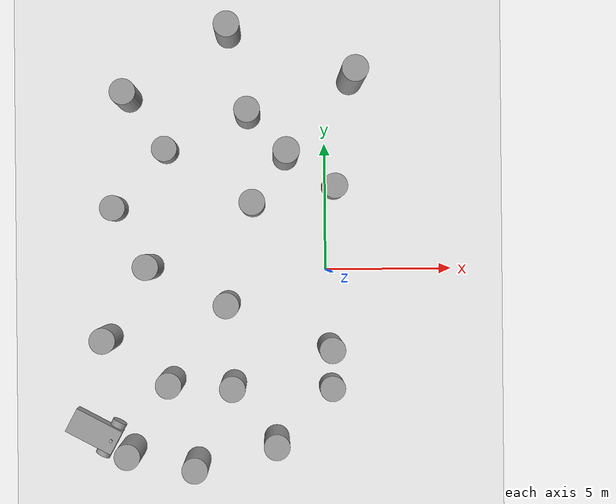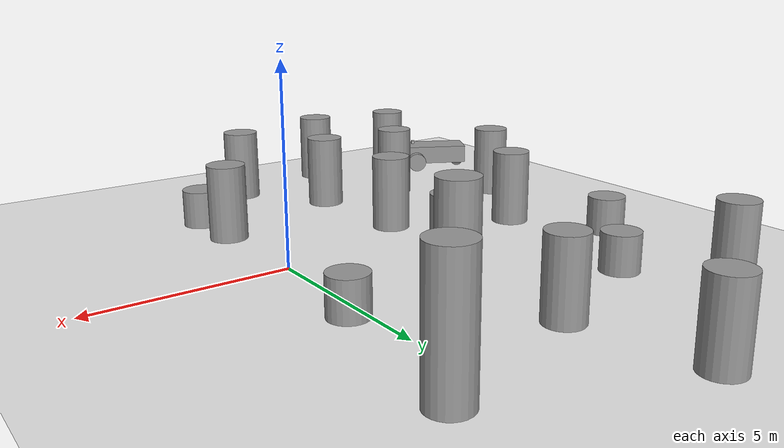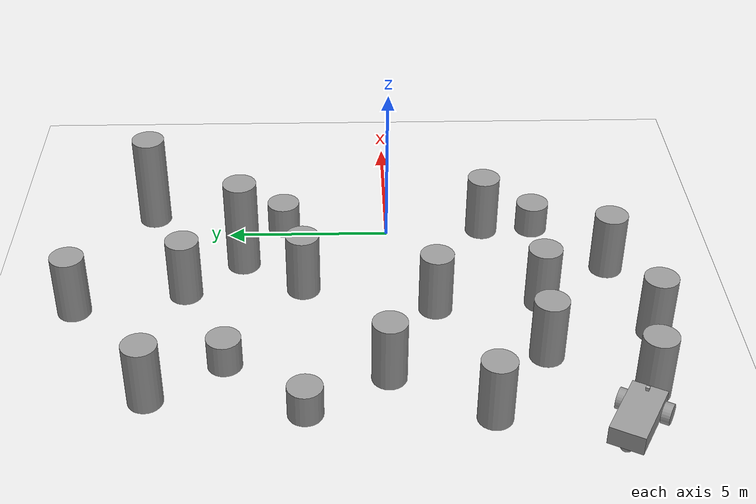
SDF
<sdf version="1.6">
 <world name="default">
  <model name="ground_plane">
   <static>1</static>
   <link name="link">
    <collision name="collision">
     <geometry><plane><normal>0 0 1</normal><size>100 100</size></plane></geometry>
     <surface><friction><ode><mu>100</mu><mu2>50</mu2></ode></friction></surface>
    </collision>
    <visual name="visual">
     <geometry><plane><normal>0 0 1</normal><size>100 100</size></plane></geometry>
     <material>
      <script><uri>file://media/materials/scripts/gazebo.material</uri><name>Gazebo/White</name></script>
     </material>
    </visual>
   </link>
  </model>
  <model name="unit_cylinder_5_clone_0">
   <link name="link">
    <inertial>
     <mass>1</mass>
     <inertia><ixx>0.145833</ixx><ixy>0</ixy><ixz>0</ixz><iyy>0.145833</iyy><iyz>0</iyz><izz>0.125</izz></inertia>
    </inertial>
    <visual name="visual">
     <geometry><cylinder><radius>0.5</radius><length>2</length></cylinder></geometry>
     <material>
      <script><name>Gazebo/Grey</name><uri>file://media/materials/scripts/gazebo.material</uri></script>
      <ambient>0.3 0.3 0.3 1</ambient>
      <diffuse>0.7 0.7 0.7 1</diffuse>
      <specular>0.01 0.01 0.01 1</specular>
      <emissive>0 0 0 1</emissive>
      <shader type="vertex"><normal_map>__default__</normal_map></shader>
     </material>
    </visual>
    <collision name="collision">
     <geometry><cylinder><radius>0.5</radius><length>2</length></cylinder></geometry>
     <surface>
      <friction>
       <ode><mu>1</mu><mu2>1</mu2><fdir1>0 0 0</fdir1><slip1>0</slip1><slip2>0</slip2></ode>
       <torsional>
        <coefficient>1</coefficient>
        <patch_radius>0</patch_radius>
        <surface_radius>0</surface_radius>
        <use_patch_radius>1</use_patch_radius>
        <ode><slip>0</slip></ode>
       </torsional>
      </friction>
      <bounce><restitution_coefficient>0</restitution_coefficient><threshold>1e+06</threshold></bounce>
      <contact>
       <collide_without_contact>0</collide_without_contact>
       <collide_without_contact_bitmask>1</collide_without_contact_bitmask>
       <collide_bitmask>1</collide_bitmask>
       <ode>
        <soft_cfm>0</soft_cfm>
        <soft_erp>0.2</soft_erp>
        <kp>1e+13</kp>
        <kd>1</kd>
        <max_vel>0.01</max_vel>
        <min_depth>0</min_depth>
       </ode>
       <bullet>
        <split_impulse>1</split_impulse>
        <split_impulse_penetration_threshold>-0.01</split_impulse_penetration_threshold>
        <soft_cfm>0</soft_cfm>
        <soft_erp>0.2</soft_erp>
        <kp>1e+13</kp>
        <kd>1</kd>
       </bullet>
      </contact>
     </surface>
    </collision>
   </link>
   <static>0</static>
   <pose>0.14929 -3.03615 0.999884 2.2e-05 -1e-06 0.002215</pose>
  </model>
  <model name="unit_cylinder_5_clone_1">
   <link name="link">
    <inertial>
     <mass>1</mass>
     <inertia><ixx>0.145833</ixx><ixy>0</ixy><ixz>0</ixz><iyy>0.145833</iyy><iyz>0</iyz><izz>0.125</izz></inertia>
    </inertial>
    <visual name="visual">
     <geometry><cylinder><radius>0.5</radius><length>2</length></cylinder></geometry>
     <material>
      <script><name>Gazebo/Grey</name><uri>file://media/materials/scripts/gazebo.material</uri></script>
      <ambient>0.3 0.3 0.3 1</ambient>
      <diffuse>0.7 0.7 0.7 1</diffuse>
      <specular>0.01 0.01 0.01 1</specular>
      <emissive>0 0 0 1</emissive>
      <shader type="vertex"><normal_map>__default__</normal_map></shader>
     </material>
    </visual>
    <collision name="collision">
     <geometry><cylinder><radius>0.5</radius><length>2</length></cylinder></geometry>
     <surface>
      <friction>
       <ode><mu>1</mu><mu2>1</mu2><fdir1>0 0 0</fdir1><slip1>0</slip1><slip2>0</slip2></ode>
       <torsional>
        <coefficient>1</coefficient>
        <patch_radius>0</patch_radius>
        <surface_radius>0</surface_radius>
        <use_patch_radius>1</use_patch_radius>
        <ode><slip>0</slip></ode>
       </torsional>
      </friction>
      <bounce><restitution_coefficient>0</restitution_coefficient><threshold>1e+06</threshold></bounce>
      <contact>
       <collide_without_contact>0</collide_without_contact>
       <collide_without_contact_bitmask>1</collide_without_contact_bitmask>
       <collide_bitmask>1</collide_bitmask>
       <ode>
        <soft_cfm>0</soft_cfm>
        <soft_erp>0.2</soft_erp>
        <kp>1e+13</kp>
        <kd>1</kd>
        <max_vel>0.01</max_vel>
        <min_depth>0</min_depth>
       </ode>
       <bullet>
        <split_impulse>1</split_impulse>
        <split_impulse_penetration_threshold>-0.01</split_impulse_penetration_threshold>
        <soft_cfm>0</soft_cfm>
        <soft_erp>0.2</soft_erp>
        <kp>1e+13</kp>
        <kd>1</kd>
       </bullet>
      </contact>
     </surface>
    </collision>
   </link>
   <static>0</static>
   <pose>-2.86936 2.60722 0.999884 2.2e-05 -1e-06 -0.002002</pose>
  </model>
  <model name="unit_cylinder_5_clone_2">
   <link name="link">
    <inertial>
     <mass>1</mass>
     <inertia><ixx>0.145833</ixx><ixy>0</ixy><ixz>0</ixz><iyy>0.145833</iyy><iyz>0</iyz><izz>0.125</izz></inertia>
    </inertial>
    <visual name="visual">
     <geometry><cylinder><radius>0.5</radius><length>2</length></cylinder></geometry>
     <material>
      <script><name>Gazebo/Grey</name><uri>file://media/materials/scripts/gazebo.material</uri></script>
      <ambient>0.3 0.3 0.3 1</ambient>
      <diffuse>0.7 0.7 0.7 1</diffuse>
      <specular>0.01 0.01 0.01 1</specular>
      <emissive>0 0 0 1</emissive>
      <shader type="vertex"><normal_map>__default__</normal_map></shader>
     </material>
    </visual>
    <collision name="collision">
     <geometry><cylinder><radius>0.5</radius><length>2</length></cylinder></geometry>
     <surface>
      <friction>
       <ode><mu>1</mu><mu2>1</mu2><fdir1>0 0 0</fdir1><slip1>0</slip1><slip2>0</slip2></ode>
       <torsional>
        <coefficient>1</coefficient>
        <patch_radius>0</patch_radius>
        <surface_radius>0</surface_radius>
        <use_patch_radius>1</use_patch_radius>
        <ode><slip>0</slip></ode>
       </torsional>
      </friction>
      <bounce><restitution_coefficient>0</restitution_coefficient><threshold>1e+06</threshold></bounce>
      <contact>
       <collide_without_contact>0</collide_without_contact>
       <collide_without_contact_bitmask>1</collide_without_contact_bitmask>
       <collide_bitmask>1</collide_bitmask>
       <ode>
        <soft_cfm>0</soft_cfm>
        <soft_erp>0.2</soft_erp>
        <kp>1e+13</kp>
        <kd>1</kd>
        <max_vel>0.01</max_vel>
        <min_depth>0</min_depth>
       </ode>
       <bullet>
        <split_impulse>1</split_impulse>
        <split_impulse_penetration_threshold>-0.01</split_impulse_penetration_threshold>
        <soft_cfm>0</soft_cfm>
        <soft_erp>0.2</soft_erp>
        <kp>1e+13</kp>
        <kd>1</kd>
       </bullet>
      </contact>
     </surface>
    </collision>
   </link>
   <static>0</static>
   <pose>-3.88295 -1.30827 0.999884 2.2e-05 -1e-06 0.000101</pose>
  </model>
  <model name="unit_cylinder_5_clone_3">
   <link name="link">
    <inertial>
     <mass>1</mass>
     <inertia><ixx>0.145833</ixx><ixy>0</ixy><ixz>0</ixz><iyy>0.145833</iyy><iyz>0</iyz><izz>0.125</izz></inertia>
    </inertial>
    <visual name="visual">
     <geometry><cylinder><radius>0.5</radius><length>2</length></cylinder></geometry>
     <material>
      <script><name>Gazebo/Grey</name><uri>file://media/materials/scripts/gazebo.material</uri></script>
      <ambient>0.3 0.3 0.3 1</ambient>
      <diffuse>0.7 0.7 0.7 1</diffuse>
      <specular>0.01 0.01 0.01 1</specular>
      <emissive>0 0 0 1</emissive>
      <shader type="vertex"><normal_map>__default__</normal_map></shader>
     </material>
    </visual>
    <collision name="collision">
     <geometry><cylinder><radius>0.5</radius><length>2</length></cylinder></geometry>
     <surface>
      <friction>
       <ode><mu>1</mu><mu2>1</mu2><fdir1>0 0 0</fdir1><slip1>0</slip1><slip2>0</slip2></ode>
       <torsional>
        <coefficient>1</coefficient>
        <patch_radius>0</patch_radius>
        <surface_radius>0</surface_radius>
        <use_patch_radius>1</use_patch_radius>
        <ode><slip>0</slip></ode>
       </torsional>
      </friction>
      <bounce><restitution_coefficient>0</restitution_coefficient><threshold>1e+06</threshold></bounce>
      <contact>
       <collide_without_contact>0</collide_without_contact>
       <collide_without_contact_bitmask>1</collide_without_contact_bitmask>
       <collide_bitmask>1</collide_bitmask>
       <ode>
        <soft_cfm>0</soft_cfm>
        <soft_erp>0.2</soft_erp>
        <kp>1e+13</kp>
        <kd>1</kd>
        <max_vel>0.01</max_vel>
        <min_depth>0</min_depth>
       </ode>
       <bullet>
        <split_impulse>1</split_impulse>
        <split_impulse_penetration_threshold>-0.01</split_impulse_penetration_threshold>
        <soft_cfm>0</soft_cfm>
        <soft_erp>0.2</soft_erp>
        <kp>1e+13</kp>
        <kd>1</kd>
       </bullet>
      </contact>
     </surface>
    </collision>
   </link>
   <static>0</static>
   <pose>-3.66733 -4.47288 0.999884 2.2e-05 -1e-06 0.000326</pose>
  </model>
  <model name="unit_cylinder_5_clone_4">
   <link name="link">
    <inertial>
     <mass>1</mass>
     <inertia><ixx>0.145833</ixx><ixy>0</ixy><ixz>0</ixz><iyy>0.145833</iyy><iyz>0</iyz><izz>0.125</izz></inertia>
    </inertial>
    <visual name="visual">
     <geometry><cylinder><radius>0.5</radius><length>2</length></cylinder></geometry>
     <material>
      <script><name>Gazebo/Grey</name><uri>file://media/materials/scripts/gazebo.material</uri></script>
      <ambient>0.3 0.3 0.3 1</ambient>
      <diffuse>0.7 0.7 0.7 1</diffuse>
      <specular>0.01 0.01 0.01 1</specular>
      <emissive>0 0 0 1</emissive>
      <shader type="vertex"><normal_map>__default__</normal_map></shader>
     </material>
    </visual>
    <collision name="collision">
     <geometry><cylinder><radius>0.5</radius><length>2</length></cylinder></geometry>
     <surface>
      <friction>
       <ode><mu>1</mu><mu2>1</mu2><fdir1>0 0 0</fdir1><slip1>0</slip1><slip2>0</slip2></ode>
       <torsional>
        <coefficient>1</coefficient>
        <patch_radius>0</patch_radius>
        <surface_radius>0</surface_radius>
        <use_patch_radius>1</use_patch_radius>
        <ode><slip>0</slip></ode>
       </torsional>
      </friction>
      <bounce><restitution_coefficient>0</restitution_coefficient><threshold>1e+06</threshold></bounce>
      <contact>
       <collide_without_contact>0</collide_without_contact>
       <collide_without_contact_bitmask>1</collide_without_contact_bitmask>
       <collide_bitmask>1</collide_bitmask>
       <ode>
        <soft_cfm>0</soft_cfm>
        <soft_erp>0.2</soft_erp>
        <kp>1e+13</kp>
        <kd>1</kd>
        <max_vel>0.01</max_vel>
        <min_depth>0</min_depth>
       </ode>
       <bullet>
        <split_impulse>1</split_impulse>
        <split_impulse_penetration_threshold>-0.01</split_impulse_penetration_threshold>
        <soft_cfm>0</soft_cfm>
        <soft_erp>0.2</soft_erp>
        <kp>1e+13</kp>
        <kd>1</kd>
       </bullet>
      </contact>
     </surface>
    </collision>
   </link>
   <static>0</static>
   <pose>-6.93374 0.169636 0.999884 2.2e-05 -1e-06 -0.003146</pose>
  </model>
  <model name="unit_cylinder_5_clone_5">
   <link name="link">
    <inertial>
     <mass>1</mass>
     <inertia><ixx>0.145833</ixx><ixy>0</ixy><ixz>0</ixz><iyy>0.145833</iyy><iyz>0</iyz><izz>0.125</izz></inertia>
    </inertial>
    <visual name="visual">
     <geometry><cylinder><radius>0.5</radius><length>2</length></cylinder></geometry>
     <material>
      <script><name>Gazebo/Grey</name><uri>file://media/materials/scripts/gazebo.material</uri></script>
      <ambient>0.3 0.3 0.3 1</ambient>
      <diffuse>0.7 0.7 0.7 1</diffuse>
      <specular>0.01 0.01 0.01 1</specular>
      <emissive>0 0 0 1</emissive>
      <shader type="vertex"><normal_map>__default__</normal_map></shader>
     </material>
    </visual>
    <collision name="collision">
     <geometry><cylinder><radius>0.5</radius><length>2</length></cylinder></geometry>
     <surface>
      <friction>
       <ode><mu>1</mu><mu2>1</mu2><fdir1>0 0 0</fdir1><slip1>0</slip1><slip2>0</slip2></ode>
       <torsional>
        <coefficient>1</coefficient>
        <patch_radius>0</patch_radius>
        <surface_radius>0</surface_radius>
        <use_patch_radius>1</use_patch_radius>
        <ode><slip>0</slip></ode>
       </torsional>
      </friction>
      <bounce><restitution_coefficient>0</restitution_coefficient><threshold>1e+06</threshold></bounce>
      <contact>
       <collide_without_contact>0</collide_without_contact>
       <collide_without_contact_bitmask>1</collide_without_contact_bitmask>
       <collide_bitmask>1</collide_bitmask>
       <ode>
        <soft_cfm>0</soft_cfm>
        <soft_erp>0.2</soft_erp>
        <kp>1e+13</kp>
        <kd>1</kd>
        <max_vel>0.01</max_vel>
        <min_depth>0</min_depth>
       </ode>
       <bullet>
        <split_impulse>1</split_impulse>
        <split_impulse_penetration_threshold>-0.01</split_impulse_penetration_threshold>
        <soft_cfm>0</soft_cfm>
        <soft_erp>0.2</soft_erp>
        <kp>1e+13</kp>
        <kd>1</kd>
       </bullet>
      </contact>
     </surface>
    </collision>
   </link>
   <static>0</static>
   <pose>-8.58869 -2.60631 0.999884 2.2e-05 -1e-06 -0.005554</pose>
  </model>
  <model name="unit_cylinder_0">
   <pose>0.360809 3.27692 0.499883 4e-06 -1e-06 -0.000514</pose>
   <link name="link">
    <inertial>
     <mass>1</mass>
     <inertia><ixx>0.145833</ixx><ixy>0</ixy><ixz>0</ixz><iyy>0.145833</iyy><iyz>0</iyz><izz>0.125</izz></inertia>
    </inertial>
    <collision name="collision">
     <geometry><cylinder><radius>0.5</radius><length>1</length></cylinder></geometry>
    </collision>
    <visual name="visual">
     <geometry><cylinder><radius>0.5</radius><length>1</length></cylinder></geometry>
     <material>
      <script><name>Gazebo/Grey</name><uri>file://media/materials/scripts/gazebo.material</uri></script>
     </material>
    </visual>
   </link>
  </model>
  <model name="unit_cylinder_1">
   <pose>0.210063 -4.63987 0.499883 4e-06 -1e-06 -0.000261</pose>
   <link name="link">
    <inertial>
     <mass>1</mass>
     <inertia><ixx>0.145833</ixx><ixy>0</ixy><ixz>0</ixz><iyy>0.145833</iyy><iyz>0</iyz><izz>0.125</izz></inertia>
    </inertial>
    <collision name="collision">
     <geometry><cylinder><radius>0.5</radius><length>1</length></cylinder></geometry>
    </collision>
    <visual name="visual">
     <geometry><cylinder><radius>0.5</radius><length>1</length></cylinder></geometry>
     <material>
      <script><name>Gazebo/Grey</name><uri>file://media/materials/scripts/gazebo.material</uri></script>
     </material>
    </visual>
   </link>
  </model>
  <model name="unit_cylinder_1_clone_0">
   <pose>-6.29641 4.76433 0.499884 3e-06 -3e-06 -0.000219</pose>
   <link name="link">
    <inertial>
     <mass>1</mass>
     <inertia><ixx>0.145833</ixx><ixy>0</ixy><ixz>0</ixz><iyy>0.145833</iyy><iyz>0</iyz><izz>0.125</izz></inertia>
    </inertial>
    <collision name="collision">
     <geometry><cylinder><radius>0.5</radius><length>1</length></cylinder></geometry>
    </collision>
    <visual name="visual">
     <geometry><cylinder><radius>0.5</radius><length>1</length></cylinder></geometry>
     <material>
      <script><name>Gazebo/Grey</name><uri>file://media/materials/scripts/gazebo.material</uri></script>
     </material>
    </visual>
   </link>
  </model>
  <model name="unit_cylinder_1_clone_1">
   <pose>-8.3358 2.47751 0.499884 3e-06 -3e-06 0.00131</pose>
   <link name="link">
    <inertial>
     <mass>1</mass>
     <inertia><ixx>0.145833</ixx><ixy>0</ixy><ixz>0</ixz><iyy>0.145833</iyy><iyz>0</iyz><izz>0.125</izz></inertia>
    </inertial>
    <collision name="collision">
     <geometry><cylinder><radius>0.5</radius><length>1</length></cylinder></geometry>
    </collision>
    <visual name="visual">
     <geometry><cylinder><radius>0.5</radius><length>1</length></cylinder></geometry>
     <material>
      <script><name>Gazebo/Grey</name><uri>file://media/materials/scripts/gazebo.material</uri></script>
     </material>
    </visual>
   </link>
  </model>
  <model name="unit_cylinder_5_clone_1_clone_0">
   <link name="link">
    <inertial>
     <mass>1</mass>
     <inertia><ixx>0.145833</ixx><ixy>0</ixy><ixz>0</ixz><iyy>0.145833</iyy><iyz>0</iyz><izz>0.125</izz></inertia>
    </inertial>
    <visual name="visual">
     <geometry><cylinder><radius>0.5</radius><length>2</length></cylinder></geometry>
     <material>
      <script><name>Gazebo/Grey</name><uri>file://media/materials/scripts/gazebo.material</uri></script>
      <ambient>0.3 0.3 0.3 1</ambient>
      <diffuse>0.7 0.7 0.7 1</diffuse>
      <specular>0.01 0.01 0.01 1</specular>
      <emissive>0 0 0 1</emissive>
      <shader type="vertex"><normal_map>__default__</normal_map></shader>
     </material>
    </visual>
    <collision name="collision">
     <geometry><cylinder><radius>0.5</radius><length>2</length></cylinder></geometry>
     <surface>
      <friction>
       <ode><mu>1</mu><mu2>1</mu2><fdir1>0 0 0</fdir1><slip1>0</slip1><slip2>0</slip2></ode>
       <torsional>
        <coefficient>1</coefficient>
        <patch_radius>0</patch_radius>
        <surface_radius>0</surface_radius>
        <use_patch_radius>1</use_patch_radius>
        <ode><slip>0</slip></ode>
       </torsional>
      </friction>
      <bounce><restitution_coefficient>0</restitution_coefficient><threshold>1e+06</threshold></bounce>
      <contact>
       <collide_without_contact>0</collide_without_contact>
       <collide_without_contact_bitmask>1</collide_without_contact_bitmask>
       <collide_bitmask>1</collide_bitmask>
       <ode>
        <soft_cfm>0</soft_cfm>
        <soft_erp>0.2</soft_erp>
        <kp>1e+13</kp>
        <kd>1</kd>
        <max_vel>0.01</max_vel>
        <min_depth>0</min_depth>
       </ode>
       <bullet>
        <split_impulse>1</split_impulse>
        <split_impulse_penetration_threshold>-0.01</split_impulse_penetration_threshold>
        <soft_cfm>0</soft_cfm>
        <soft_erp>0.2</soft_erp>
        <kp>1e+13</kp>
        <kd>1</kd>
       </bullet>
      </contact>
     </surface>
    </collision>
   </link>
   <static>0</static>
   <pose>-3.04049 6.13016 0.999884 2.2e-05 -1e-06 -0.001447</pose>
  </model>
  <model name="unit_cylinder_0_0_clone_clone">
   <link name="link">
    <inertial>
     <mass>1</mass>
     <inertia><ixx>0.145833</ixx><ixy>0</ixy><ixz>0</ixz><iyy>0.145833</iyy><iyz>0</iyz><izz>0.125</izz></inertia>
    </inertial>
    <visual name="visual">
     <geometry><cylinder><radius>0.5</radius><length>3</length></cylinder></geometry>
     <material>
      <script><name>Gazebo/Grey</name><uri>file://media/materials/scripts/gazebo.material</uri></script>
      <ambient>0.3 0.3 0.3 1</ambient>
      <diffuse>0.7 0.7 0.7 1</diffuse>
      <specular>0.01 0.01 0.01 1</specular>
      <emissive>0 0 0 1</emissive>
      <shader type="vertex"><normal_map>__default__</normal_map></shader>
     </material>
    </visual>
    <collision name="collision">
     <geometry><cylinder><radius>0.5</radius><length>3</length></cylinder></geometry>
     <surface>
      <friction>
       <ode><mu>1</mu><mu2>1</mu2><fdir1>0 0 0</fdir1><slip1>0</slip1><slip2>0</slip2></ode>
       <torsional>
        <coefficient>1</coefficient>
        <patch_radius>0</patch_radius>
        <surface_radius>0</surface_radius>
        <use_patch_radius>1</use_patch_radius>
        <ode><slip>0</slip></ode>
       </torsional>
      </friction>
      <bounce><restitution_coefficient>0</restitution_coefficient><threshold>1e+06</threshold></bounce>
      <contact>
       <collide_without_contact>0</collide_without_contact>
       <collide_without_contact_bitmask>1</collide_without_contact_bitmask>
       <collide_bitmask>1</collide_bitmask>
       <ode>
        <soft_cfm>0</soft_cfm>
        <soft_erp>0.2</soft_erp>
        <kp>1e+13</kp>
        <kd>1</kd>
        <max_vel>0.01</max_vel>
        <min_depth>0</min_depth>
       </ode>
       <bullet>
        <split_impulse>1</split_impulse>
        <split_impulse_penetration_threshold>-0.01</split_impulse_penetration_threshold>
        <soft_cfm>0</soft_cfm>
        <soft_erp>0.2</soft_erp>
        <kp>1e+13</kp>
        <kd>1</kd>
       </bullet>
      </contact>
     </surface>
    </collision>
   </link>
   <static>0</static>
   <pose>1.00244 7.45917 1.49988 4.7e-05 -4e-06 -0.008739</pose>
  </model>
  <model name="unit_cylinder_0_0_clone_clone_1">
   <link name="link">
    <inertial>
     <mass>1</mass>
     <inertia><ixx>0.145833</ixx><ixy>0</ixy><ixz>0</ixz><iyy>0.145833</iyy><iyz>0</iyz><izz>0.125</izz></inertia>
    </inertial>
    <visual name="visual">
     <geometry><cylinder><radius>0.5</radius><length>3</length></cylinder></geometry>
     <material>
      <script><name>Gazebo/Grey</name><uri>file://media/materials/scripts/gazebo.material</uri></script>
      <ambient>0.3 0.3 0.3 1</ambient>
      <diffuse>0.7 0.7 0.7 1</diffuse>
      <specular>0.01 0.01 0.01 1</specular>
      <emissive>0 0 0 1</emissive>
      <shader type="vertex"><normal_map>__default__</normal_map></shader>
     </material>
    </visual>
    <collision name="collision">
     <geometry><cylinder><radius>0.5</radius><length>3</length></cylinder></geometry>
     <surface>
      <friction>
       <ode><mu>1</mu><mu2>1</mu2><fdir1>0 0 0</fdir1><slip1>0</slip1><slip2>0</slip2></ode>
       <torsional>
        <coefficient>1</coefficient>
        <patch_radius>0</patch_radius>
        <surface_radius>0</surface_radius>
        <use_patch_radius>1</use_patch_radius>
        <ode><slip>0</slip></ode>
       </torsional>
      </friction>
      <bounce><restitution_coefficient>0</restitution_coefficient><threshold>1e+06</threshold></bounce>
      <contact>
       <collide_without_contact>0</collide_without_contact>
       <collide_without_contact_bitmask>1</collide_without_contact_bitmask>
       <collide_bitmask>1</collide_bitmask>
       <ode>
        <soft_cfm>0</soft_cfm>
        <soft_erp>0.2</soft_erp>
        <kp>1e+13</kp>
        <kd>1</kd>
        <max_vel>0.01</max_vel>
        <min_depth>0</min_depth>
       </ode>
       <bullet>
        <split_impulse>1</split_impulse>
        <split_impulse_penetration_threshold>-0.01</split_impulse_penetration_threshold>
        <soft_cfm>0</soft_cfm>
        <soft_erp>0.2</soft_erp>
        <kp>1e+13</kp>
        <kd>1</kd>
       </bullet>
      </contact>
     </surface>
    </collision>
   </link>
   <static>0</static>
   <pose>-1.56813 4.46689 1.49988 4.7e-05 4e-06 0.005397</pose>
  </model>
  <model name="unit_cylinder_5_clone_0_clone_1">
   <link name="link">
    <inertial>
     <mass>1</mass>
     <inertia><ixx>0.145833</ixx><ixy>0</ixy><ixz>0</ixz><iyy>0.145833</iyy><iyz>0</iyz><izz>0.125</izz></inertia>
    </inertial>
    <visual name="visual">
     <geometry><cylinder><radius>0.5</radius><length>2</length></cylinder></geometry>
     <material>
      <script><name>Gazebo/Grey</name><uri>file://media/materials/scripts/gazebo.material</uri></script>
      <ambient>0.3 0.3 0.3 1</ambient>
      <diffuse>0.7 0.7 0.7 1</diffuse>
      <specular>0.01 0.01 0.01 1</specular>
      <emissive>0 0 0 1</emissive>
      <shader type="vertex"><normal_map>__default__</normal_map></shader>
     </material>
    </visual>
    <collision name="collision">
     <geometry><cylinder><radius>0.5</radius><length>2</length></cylinder></geometry>
     <surface>
      <friction>
       <ode><mu>1</mu><mu2>1</mu2><fdir1>0 0 0</fdir1><slip1>0</slip1><slip2>0</slip2></ode>
       <torsional>
        <coefficient>1</coefficient>
        <patch_radius>0</patch_radius>
        <surface_radius>0</surface_radius>
        <use_patch_radius>1</use_patch_radius>
        <ode><slip>0</slip></ode>
       </torsional>
      </friction>
      <bounce><restitution_coefficient>0</restitution_coefficient><threshold>1e+06</threshold></bounce>
      <contact>
       <collide_without_contact>0</collide_without_contact>
       <collide_without_contact_bitmask>1</collide_without_contact_bitmask>
       <collide_bitmask>1</collide_bitmask>
       <ode>
        <soft_cfm>0</soft_cfm>
        <soft_erp>0.2</soft_erp>
        <kp>1e+13</kp>
        <kd>1</kd>
        <max_vel>0.01</max_vel>
        <min_depth>0</min_depth>
       </ode>
       <bullet>
        <split_impulse>1</split_impulse>
        <split_impulse_penetration_threshold>-0.01</split_impulse_penetration_threshold>
        <soft_cfm>0</soft_cfm>
        <soft_erp>0.2</soft_erp>
        <kp>1e+13</kp>
        <kd>1</kd>
       </bullet>
      </contact>
     </surface>
    </collision>
   </link>
   <static>0</static>
   <pose>-1.98793 -6.68675 0.999884 2.2e-05 -1e-06 0.002087</pose>
  </model>
  <model name="unit_cylinder_5_clone_0_clone_6">
   <link name="link">
    <inertial>
     <mass>1</mass>
     <inertia><ixx>0.145833</ixx><ixy>0</ixy><ixz>0</ixz><iyy>0.145833</iyy><iyz>0</iyz><izz>0.125</izz></inertia>
    </inertial>
    <visual name="visual">
     <geometry><cylinder><radius>0.5</radius><length>2</length></cylinder></geometry>
     <material>
      <script><name>Gazebo/Grey</name><uri>file://media/materials/scripts/gazebo.material</uri></script>
      <ambient>0.3 0.3 0.3 1</ambient>
      <diffuse>0.7 0.7 0.7 1</diffuse>
      <specular>0.01 0.01 0.01 1</specular>
      <emissive>0 0 0 1</emissive>
      <shader type="vertex"><normal_map>__default__</normal_map></shader>
     </material>
    </visual>
    <collision name="collision">
     <geometry><cylinder><radius>0.5</radius><length>2</length></cylinder></geometry>
     <surface>
      <friction>
       <ode><mu>1</mu><mu2>1</mu2><fdir1>0 0 0</fdir1><slip1>0</slip1><slip2>0</slip2></ode>
       <torsional>
        <coefficient>1</coefficient>
        <patch_radius>0</patch_radius>
        <surface_radius>0</surface_radius>
        <use_patch_radius>1</use_patch_radius>
        <ode><slip>0</slip></ode>
       </torsional>
      </friction>
      <bounce><restitution_coefficient>0</restitution_coefficient><threshold>1e+06</threshold></bounce>
      <contact>
       <collide_without_contact>0</collide_without_contact>
       <collide_without_contact_bitmask>1</collide_without_contact_bitmask>
       <collide_bitmask>1</collide_bitmask>
       <ode>
        <soft_cfm>0</soft_cfm>
        <soft_erp>0.2</soft_erp>
        <kp>1e+13</kp>
        <kd>1</kd>
        <max_vel>0.01</max_vel>
        <min_depth>0</min_depth>
       </ode>
       <bullet>
        <split_impulse>1</split_impulse>
        <split_impulse_penetration_threshold>-0.01</split_impulse_penetration_threshold>
        <soft_cfm>0</soft_cfm>
        <soft_erp>0.2</soft_erp>
        <kp>1e+13</kp>
        <kd>1</kd>
       </bullet>
      </contact>
     </surface>
    </collision>
   </link>
   <static>0</static>
   <pose>-7.74649 6.83599 0.999884 2.2e-05 -1e-06 0.001364</pose>
  </model>
  <model name="unit_cylinder_5_clone_0_clone_7">
   <link name="link">
    <inertial>
     <mass>1</mass>
     <inertia><ixx>0.145833</ixx><ixy>0</ixy><ixz>0</ixz><iyy>0.145833</iyy><iyz>0</iyz><izz>0.125</izz></inertia>
    </inertial>
    <visual name="visual">
     <geometry><cylinder><radius>0.5</radius><length>2</length></cylinder></geometry>
     <material>
      <script><name>Gazebo/Grey</name><uri>file://media/materials/scripts/gazebo.material</uri></script>
      <ambient>0.3 0.3 0.3 1</ambient>
      <diffuse>0.7 0.7 0.7 1</diffuse>
      <specular>0.01 0.01 0.01 1</specular>
      <emissive>0 0 0 1</emissive>
      <shader type="vertex"><normal_map>__default__</normal_map></shader>
     </material>
    </visual>
    <collision name="collision">
     <geometry><cylinder><radius>0.5</radius><length>2</length></cylinder></geometry>
     <surface>
      <friction>
       <ode><mu>1</mu><mu2>1</mu2><fdir1>0 0 0</fdir1><slip1>0</slip1><slip2>0</slip2></ode>
       <torsional>
        <coefficient>1</coefficient>
        <patch_radius>0</patch_radius>
        <surface_radius>0</surface_radius>
        <use_patch_radius>1</use_patch_radius>
        <ode><slip>0</slip></ode>
       </torsional>
      </friction>
      <bounce><restitution_coefficient>0</restitution_coefficient><threshold>1e+06</threshold></bounce>
      <contact>
       <collide_without_contact>0</collide_without_contact>
       <collide_without_contact_bitmask>1</collide_without_contact_bitmask>
       <collide_bitmask>1</collide_bitmask>
       <ode>
        <soft_cfm>0</soft_cfm>
        <soft_erp>0.2</soft_erp>
        <kp>1e+13</kp>
        <kd>1</kd>
        <max_vel>0.01</max_vel>
        <min_depth>0</min_depth>
       </ode>
       <bullet>
        <split_impulse>1</split_impulse>
        <split_impulse_penetration_threshold>-0.01</split_impulse_penetration_threshold>
        <soft_cfm>0</soft_cfm>
        <soft_erp>0.2</soft_erp>
        <kp>1e+13</kp>
        <kd>1</kd>
       </bullet>
      </contact>
     </surface>
    </collision>
   </link>
   <static>0</static>
   <pose>-6.09067 -4.32214 0.999884 2.2e-05 -1e-06 0.000839</pose>
  </model>
  <model name="unit_cylinder_5_clone_0_clone_8">
   <link name="link">
    <inertial>
     <mass>1</mass>
     <inertia><ixx>0.145833</ixx><ixy>0</ixy><ixz>0</ixz><iyy>0.145833</iyy><iyz>0</iyz><izz>0.125</izz></inertia>
    </inertial>
    <visual name="visual">
     <geometry><cylinder><radius>0.5</radius><length>2</length></cylinder></geometry>
     <material>
      <script><name>Gazebo/Grey</name><uri>file://media/materials/scripts/gazebo.material</uri></script>
      <ambient>0.3 0.3 0.3 1</ambient>
      <diffuse>0.7 0.7 0.7 1</diffuse>
      <specular>0.01 0.01 0.01 1</specular>
      <emissive>0 0 0 1</emissive>
      <shader type="vertex"><normal_map>__default__</normal_map></shader>
     </material>
    </visual>
    <collision name="collision">
     <geometry><cylinder><radius>0.5</radius><length>2</length></cylinder></geometry>
     <surface>
      <friction>
       <ode><mu>1</mu><mu2>1</mu2><fdir1>0 0 0</fdir1><slip1>0</slip1><slip2>0</slip2></ode>
       <torsional>
        <coefficient>1</coefficient>
        <patch_radius>0</patch_radius>
        <surface_radius>0</surface_radius>
        <use_patch_radius>1</use_patch_radius>
        <ode><slip>0</slip></ode>
       </torsional>
      </friction>
      <bounce><restitution_coefficient>0</restitution_coefficient><threshold>1e+06</threshold></bounce>
      <contact>
       <collide_without_contact>0</collide_without_contact>
       <collide_without_contact_bitmask>1</collide_without_contact_bitmask>
       <collide_bitmask>1</collide_bitmask>
       <ode>
        <soft_cfm>0</soft_cfm>
        <soft_erp>0.2</soft_erp>
        <kp>1e+13</kp>
        <kd>1</kd>
        <max_vel>0.01</max_vel>
        <min_depth>0</min_depth>
       </ode>
       <bullet>
        <split_impulse>1</split_impulse>
        <split_impulse_penetration_threshold>-0.01</split_impulse_penetration_threshold>
        <soft_cfm>0</soft_cfm>
        <soft_erp>0.2</soft_erp>
        <kp>1e+13</kp>
        <kd>1</kd>
       </bullet>
      </contact>
     </surface>
    </collision>
   </link>
   <static>0</static>
   <pose>-7.67513 -7.00941 0.999884 2.2e-05 -1e-06 0.000146</pose>
  </model>
  <model name="unit_cylinder_5_clone_0_clone_9">
   <link name="link">
    <inertial>
     <mass>1</mass>
     <inertia><ixx>0.145833</ixx><ixy>0</ixy><ixz>0</ixz><iyy>0.145833</iyy><iyz>0</iyz><izz>0.125</izz></inertia>
    </inertial>
    <visual name="visual">
     <geometry><cylinder><radius>0.5</radius><length>2</length></cylinder></geometry>
     <material>
      <script><name>Gazebo/Grey</name><uri>file://media/materials/scripts/gazebo.material</uri></script>
      <ambient>0.3 0.3 0.3 1</ambient>
      <diffuse>0.7 0.7 0.7 1</diffuse>
      <specular>0.01 0.01 0.01 1</specular>
      <emissive>0 0 0 1</emissive>
      <shader type="vertex"><normal_map>__default__</normal_map></shader>
     </material>
    </visual>
    <collision name="collision">
     <geometry><cylinder><radius>0.5</radius><length>2</length></cylinder></geometry>
     <surface>
      <friction>
       <ode><mu>1</mu><mu2>1</mu2><fdir1>0 0 0</fdir1><slip1>0</slip1><slip2>0</slip2></ode>
       <torsional>
        <coefficient>1</coefficient>
        <patch_radius>0</patch_radius>
        <surface_radius>0</surface_radius>
        <use_patch_radius>1</use_patch_radius>
        <ode><slip>0</slip></ode>
       </torsional>
      </friction>
      <bounce><restitution_coefficient>0</restitution_coefficient><threshold>1e+06</threshold></bounce>
      <contact>
       <collide_without_contact>0</collide_without_contact>
       <collide_without_contact_bitmask>1</collide_without_contact_bitmask>
       <collide_bitmask>1</collide_bitmask>
       <ode>
        <soft_cfm>0</soft_cfm>
        <soft_erp>0.2</soft_erp>
        <kp>1e+13</kp>
        <kd>1</kd>
        <max_vel>0.01</max_vel>
        <min_depth>0</min_depth>
       </ode>
       <bullet>
        <split_impulse>1</split_impulse>
        <split_impulse_penetration_threshold>-0.01</split_impulse_penetration_threshold>
        <soft_cfm>0</soft_cfm>
        <soft_erp>0.2</soft_erp>
        <kp>1e+13</kp>
        <kd>1</kd>
       </bullet>
      </contact>
     </surface>
    </collision>
   </link>
   <static>0</static>
   <pose>-5.11629 -7.54676 0.999884 2.2e-05 -1e-06 0.000598</pose>
  </model>
  <model name="follower_vehicle">
   <pose>-9.0333 -6.34117 0.325 -1.3e-05 -1e-06 -0.48989</pose>
   <link name="chassis">
    <pose>-0.151427 -0 0.175 0 -0 0</pose>
    <inertial>
     <mass>1.14395</mass>
     <inertia>
      <ixx>0.126164</ixx>
      <ixy>0</ixy>
      <ixz>0</ixz>
      <iyy>0.416519</iyy>
      <iyz>0</iyz>
      <izz>0.481014</izz>
     </inertia>
    </inertial>
    <visual name="visual">
     <geometry><box><size>2.01142 1 0.568726</size></box></geometry>
     <material>
      <script><uri>file://media/materials/scripts/gazebo.material</uri><name>Gazebo/Grey</name></script>
     </material>
    </visual>
    <collision name="collision">
     <geometry><box><size>2.01142 1 0.568726</size></box></geometry>
     <surface>
      <friction><ode><mu>1</mu><mu2>1</mu2><fdir1>0 0 0</fdir1><slip1>0</slip1><slip2>0</slip2></ode></friction>
      <bounce><restitution_coefficient>0</restitution_coefficient><threshold>1e+06</threshold></bounce>
      <contact>
       <collide_without_contact>0</collide_without_contact>
       <collide_without_contact_bitmask>1</collide_without_contact_bitmask>
       <collide_bitmask>1</collide_bitmask>
       <ode>
        <soft_cfm>0</soft_cfm>
        <soft_erp>0.2</soft_erp>
        <kp>1e+13</kp>
        <kd>1</kd>
        <max_vel>0.01</max_vel>
        <min_depth>0</min_depth>
       </ode>
      </contact>
     </surface>
    </collision>
   </link>
   <link name="wheel_1">
    <pose>0.554283 0.625029 -0.025 1.5707 -0 0</pose>
    <inertial>
     <mass>2</mass>
     <inertia><ixx>0.145833</ixx><ixy>0</ixy><ixz>0</ixz><iyy>0.145833</iyy><iyz>0</iyz><izz>0.125</izz></inertia>
    </inertial>
    <visual name="visual">
     <geometry><cylinder><radius>0.3</radius><length>0.25</length></cylinder></geometry>
     <material>
      <script><uri>file://media/materials/scripts/gazebo.material</uri><name>Gazebo/Grey</name></script>
     </material>
    </visual>
    <collision name="collision">
     <geometry><cylinder><radius>0.3</radius><length>0.25</length></cylinder></geometry>
     <surface>
      <friction><ode><mu>1</mu><mu2>1</mu2><fdir1>0 0 0</fdir1><slip1>0</slip1><slip2>0</slip2></ode></friction>
      <bounce><restitution_coefficient>0</restitution_coefficient><threshold>1e+06</threshold></bounce>
      <contact>
       <collide_without_contact>0</collide_without_contact>
       <collide_without_contact_bitmask>1</collide_without_contact_bitmask>
       <collide_bitmask>1</collide_bitmask>
       <ode>
        <soft_cfm>0</soft_cfm>
        <soft_erp>0.2</soft_erp>
        <kp>1e+13</kp>
        <kd>1</kd>
        <max_vel>0.01</max_vel>
        <min_depth>0</min_depth>
       </ode>
      </contact>
     </surface>
    </collision>
   </link>
   <link name="wheel_2">
    <pose>0.554282 -0.625029 -0.025 1.5707 -0 0</pose>
    <inertial>
     <mass>2</mass>
     <inertia><ixx>0.145833</ixx><ixy>0</ixy><ixz>0</ixz><iyy>0.145833</iyy><iyz>0</iyz><izz>0.125</izz></inertia>
    </inertial>
    <visual name="visual">
     <geometry><cylinder><radius>0.3</radius><length>0.25</length></cylinder></geometry>
     <material>
      <script><uri>file://media/materials/scripts/gazebo.material</uri><name>Gazebo/Grey</name></script>
     </material>
    </visual>
    <collision name="collision">
     <geometry><cylinder><radius>0.3</radius><length>0.25</length></cylinder></geometry>
     <surface>
      <friction><ode><mu>1</mu><mu2>1</mu2><fdir1>0 0 0</fdir1><slip1>0</slip1><slip2>0</slip2></ode></friction>
      <bounce><restitution_coefficient>0</restitution_coefficient><threshold>1e+06</threshold></bounce>
      <contact>
       <collide_without_contact>0</collide_without_contact>
       <collide_without_contact_bitmask>1</collide_without_contact_bitmask>
       <collide_bitmask>1</collide_bitmask>
       <ode>
        <soft_cfm>0</soft_cfm>
        <soft_erp>0.2</soft_erp>
        <kp>1e+13</kp>
        <kd>1</kd>
        <max_vel>0.01</max_vel>
        <min_depth>0</min_depth>
       </ode>
      </contact>
     </surface>
    </collision>
   </link>
   <link name="caster">
    <pose>-0.957138 -0 -0.125 0 -0 0</pose>
    <inertial>
     <mass>1</mass>
     <inertia><ixx>0.1</ixx><ixy>0</ixy><ixz>0</ixz><iyy>0.1</iyy><iyz>0</iyz><izz>0.1</izz></inertia>
    </inertial>
    <visual name="visual">
     <geometry><sphere><radius>0.2</radius></sphere></geometry>
     <material>
      <script><uri>file://media/materials/scripts/gazebo.material</uri><name>Gazebo/Grey</name></script>
     </material>
    </visual>
    <collision name="collision">
     <geometry><sphere><radius>0.2</radius></sphere></geometry>
     <surface>
      <friction><ode><mu>1</mu><mu2>1</mu2><fdir1>0 0 0</fdir1><slip1>0</slip1><slip2>0</slip2></ode></friction>
      <bounce><restitution_coefficient>0</restitution_coefficient><threshold>1e+06</threshold></bounce>
      <contact>
       <collide_without_contact>0</collide_without_contact>
       <collide_without_contact_bitmask>1</collide_without_contact_bitmask>
       <collide_bitmask>1</collide_bitmask>
       <ode>
        <soft_cfm>0</soft_cfm>
        <soft_erp>0.2</soft_erp>
        <kp>1e+13</kp>
        <kd>1</kd>
        <max_vel>0.01</max_vel>
        <min_depth>0</min_depth>
       </ode>
      </contact>
     </surface>
    </collision>
   </link>
   <model name="depth_camera">
    <link name="link">
     <pose>0.05 0.05 0.05 0 -0 0</pose>
     <inertial>
      <mass>0.1</mass>
      <inertia>
       <ixx>0.000166667</ixx>
       <iyy>0.000166667</iyy>
       <izz>0.000166667</izz>
       <ixy>0</ixy>
       <ixz>0</ixz>
       <iyz>0</iyz>
      </inertia>
     </inertial>
     <collision name="collision"><geometry><box><size>0.1 0.1 0.1</size></box></geometry></collision>
     <visual name="visual"><geometry><box><size>0.1 0.1 0.1</size></box></geometry></visual>
     <sensor name="camera" type="depth">
      <camera name="depth">
       <horizontal_fov>1.047</horizontal_fov>
       <image><width>320</width><height>240</height></image>
       <clip><near>0.1</near><far>100</far></clip>
      </camera>
      <always_on>1</always_on>
      <update_rate>30</update_rate>
      <visualize>1</visualize>
     </sensor>
    </link>
    <pose>0.569632 -0.03223 0.502056 0 -0 0</pose>
   </model>
   <joint name="chassis_wheel_1_revolute" type="revolute">
    <parent>chassis</parent>
    <child>wheel_1</child>
    <axis>
     <xyz>0 0 1</xyz>
     <use_parent_model_frame>0</use_parent_model_frame>
     <limit>
      <lower>-1.79769e+308</lower>
      <upper>1.79769e+308</upper>
      <effort>-1</effort>
      <velocity>-1</velocity>
     </limit>
     <dynamics>
      <spring_reference>0</spring_reference>
      <spring_stiffness>0</spring_stiffness>
      <damping>0</damping>
      <friction>0</friction>
     </dynamics>
    </axis>
    <physics>
     <ode><limit><cfm>0</cfm><erp>0.2</erp></limit><suspension><cfm>0</cfm><erp>0.2</erp></suspension></ode>
    </physics>
   </joint>
   <joint name="chassis_wheel_2_revolute" type="revolute">
    <parent>chassis</parent>
    <child>wheel_2</child>
    <axis>
     <xyz>0 0 1</xyz>
     <use_parent_model_frame>0</use_parent_model_frame>
     <limit>
      <lower>-1.79769e+308</lower>
      <upper>1.79769e+308</upper>
      <effort>-1</effort>
      <velocity>-1</velocity>
     </limit>
     <dynamics>
      <spring_reference>0</spring_reference>
      <spring_stiffness>0</spring_stiffness>
      <damping>0</damping>
      <friction>0</friction>
     </dynamics>
    </axis>
    <physics>
     <ode><limit><cfm>0</cfm><erp>0.2</erp></limit><suspension><cfm>0</cfm><erp>0.2</erp></suspension></ode>
    </physics>
   </joint>
   <joint name="chassis_caster_ball" type="ball">
    <parent>chassis</parent>
    <child>caster</child>
    <physics>
     <ode><limit><cfm>0</cfm><erp>0.2</erp></limit><suspension><cfm>0</cfm><erp>0.2</erp></suspension></ode>
    </physics>
   </joint>
   <joint name="chassis_depth_camera_link_fixed" type="fixed">
    <parent>chassis</parent>
    <child>depth_camera::link</child>
    <physics>
     <ode><limit><cfm>0</cfm><erp>0.2</erp></limit><suspension><cfm>0</cfm><erp>0.2</erp></suspension></ode>
    </physics>
   </joint>
   <static>0</static>
   <plugin name="follower" filename="libFollowerPlugin.so"/>
  </model>
  <model name="unit_cylinder_5_clone_1_clone_0_clone">
   <link name="link">
    <inertial>
     <mass>1</mass>
     <inertia><ixx>0.145833</ixx><ixy>0</ixy><ixz>0</ixz><iyy>0.145833</iyy><iyz>0</iyz><izz>0.125</izz></inertia>
    </inertial>
    <visual name="visual">
     <geometry><cylinder><radius>0.5</radius><length>2</length></cylinder></geometry>
     <material>
      <script><name>Gazebo/Grey</name><uri>file://media/materials/scripts/gazebo.material</uri></script>
      <ambient>0.3 0.3 0.3 1</ambient>
      <diffuse>0.7 0.7 0.7 1</diffuse>
      <specular>0.01 0.01 0.01 1</specular>
      <emissive>0 0 0 1</emissive>
      <shader type="vertex"><normal_map>__default__</normal_map></shader>
     </material>
    </visual>
    <collision name="collision">
     <geometry><cylinder><radius>0.5</radius><length>2</length></cylinder></geometry>
     <surface>
      <friction>
       <ode><mu>1</mu><mu2>1</mu2><fdir1>0 0 0</fdir1><slip1>0</slip1><slip2>0</slip2></ode>
       <torsional>
        <coefficient>1</coefficient>
        <patch_radius>0</patch_radius>
        <surface_radius>0</surface_radius>
        <use_patch_radius>1</use_patch_radius>
        <ode><slip>0</slip></ode>
       </torsional>
      </friction>
      <bounce><restitution_coefficient>0</restitution_coefficient><threshold>1e+06</threshold></bounce>
      <contact>
       <collide_without_contact>0</collide_without_contact>
       <collide_without_contact_bitmask>1</collide_without_contact_bitmask>
       <collide_bitmask>1</collide_bitmask>
       <ode>
        <soft_cfm>0</soft_cfm>
        <soft_erp>0.2</soft_erp>
        <kp>1e+13</kp>
        <kd>1</kd>
        <max_vel>0.01</max_vel>
        <min_depth>0</min_depth>
       </ode>
       <bullet>
        <split_impulse>1</split_impulse>
        <split_impulse_penetration_threshold>-0.01</split_impulse_penetration_threshold>
        <soft_cfm>0</soft_cfm>
        <soft_erp>0.2</soft_erp>
        <kp>1e+13</kp>
        <kd>1</kd>
       </bullet>
      </contact>
     </surface>
    </collision>
   </link>
   <static>0</static>
   <pose>-3.78876 9.36631 0.999884 2.2e-05 -1e-06 -0.00142</pose>
  </model>
 </world>
</sdf>
